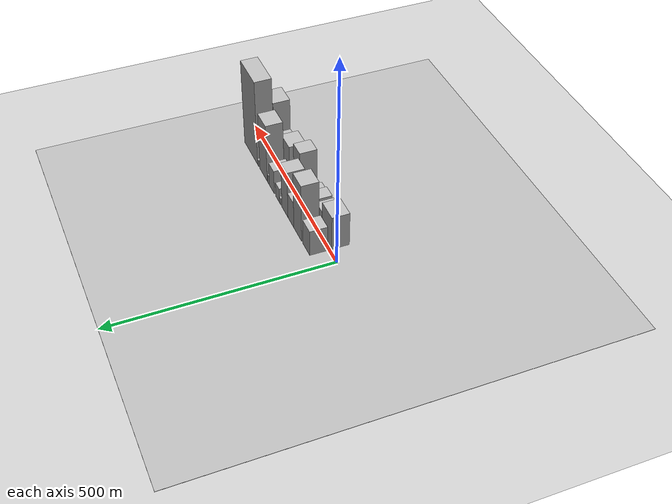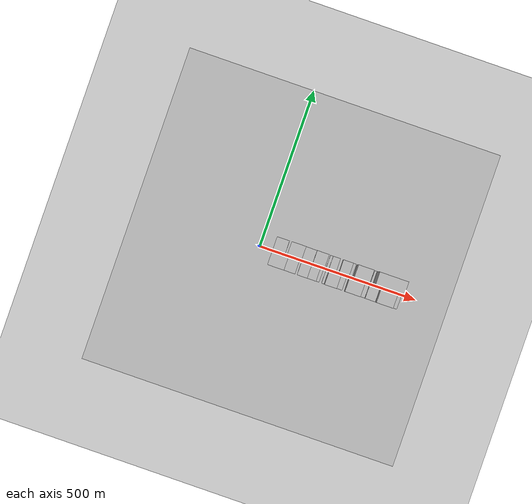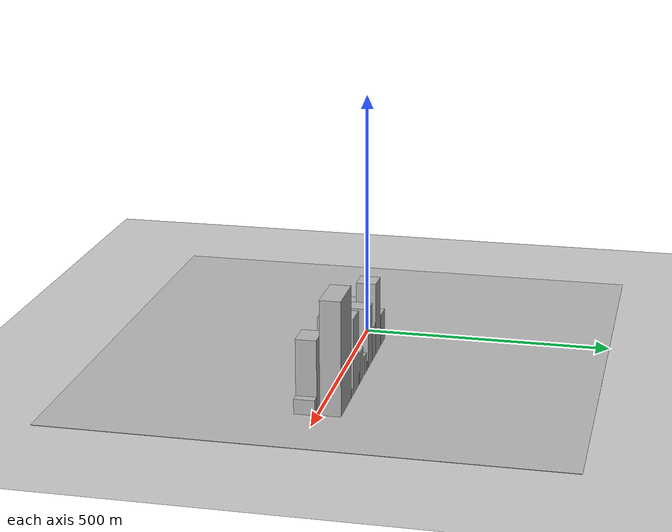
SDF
<?xml version="1.0" encoding="utf-8"?>

<sdf version="1.6">

   <world name="default">

      <gui fullscreen="0">

         <camera name="user_camera">

            <pose>-15 0 4.57585 0 0 0</pose>

            <view_controller>orbit</view_controller>

         </camera>

      </gui>

      <scene>

         <sky>

           <clouds>

             <speed>12</speed>

           </clouds>

         </sky>

         <ambient>0.4 0.4 0.4 1</ambient>

         <background>0.7 0.7 0.7 1</background>

         <shadows>1</shadows>

      </scene>

      <gravity>0 0 -9.8066</gravity>

      <magnetic_field>6e-06 2.3e-05 -4.2e-05</magnetic_field>

      <physics default="0" name="default_physics" type="ode">

         <ode>

            <solver>

               <type>quick</type>

               <iters>10</iters>

               <sor>1.0</sor>

               <use_dynamic_moi_rescaling>0</use_dynamic_moi_rescaling>

            </solver>

            <constraints>

               <cfm>0</cfm>

               <erp>0.2</erp>

               <contact_max_correcting_vel>100</contact_max_correcting_vel>

               <contact_surface_layer>0.001</contact_surface_layer>

            </constraints>

         </ode>

         <max_step_size>0.004</max_step_size>

         <real_time_factor>1</real_time_factor>

         <real_time_update_rate>250</real_time_update_rate>

      </physics>

      <light name="sun" type="directional">

         <cast_shadows>1</cast_shadows>

         <pose>0 0 10 0 0 0</pose>

         <diffuse>0.8 0.8 0.8 1</diffuse>

         <specular>0.2 0.2 0.2 1</specular>

         <attenuation>

            <range>1000</range>

            <constant>0.9</constant>

            <linear>0.01</linear>

            <quadratic>0.001</quadratic>

         </attenuation>

         <direction>-0.5 0.1 -0.9</direction>

      </light>

      <include>

         <name>ground_plane_1</name>

         <uri>model://HANNAS_ground_plane</uri>

         <pose>0 0 0  0 0 0</pose>

      </include>

      <include>

         <name>ground_plane_2</name>

         <uri>model://HANNAS_ground_plane</uri>

         <pose>100 0 0  0 0 0</pose>

      </include>

      <model name="building_1">

         <static>1</static>

         <pose frame="">59.7228 24.5000 0 0.000000 0.000000 1.570796</pose>

         <link name="link">

            <pose frame="">0 0 33.00 0 0 0</pose>

            <collision name="collision">

               <geometry>

                  <box>

                     <size>40.0000 39.4455 66.0000</size>

                  </box>

               </geometry>

               <max_contacts>10</max_contacts>

               <surface>

                  <contact>

                     <ode/>

                  </contact>

                  <bounce/>

                  <friction>

                     <torsional>

                        <ode/>

                     </torsional>

                     <ode/>

                  </friction>

               </surface>

            </collision>

            <visual name="visual">

               <cast_shadows>0</cast_shadows>

               <geometry>

                  <box>

                     <size>40.0000 39.4455 66.0000</size>

                  </box>

               </geometry>

               <material>

                  <script>

                     <uri>model://HANNAS_wall/materials/scripts</uri>

                     <uri>model://HANNAS_wall/materials/textures</uri>

                     <name>vrc/HANNAS_wall</name>

                  </script>

               </material>

            </visual>

            <self_collide>0</self_collide>

            <enable_wind>0</enable_wind>

            <kinematic>0</kinematic>

         </link>

      </model>

      <model name="building_2">

         <static>1</static>

         <pose frame="">109.1394 24.5000 0 0.000000 0.000000 1.570796</pose>

         <link name="link">

            <pose frame="">0 0 75.00 0 0 0</pose>

            <collision name="collision">

               <geometry>

                  <box>

                     <size>40.0000 45.3878 150.0000</size>

                  </box>

               </geometry>

               <max_contacts>10</max_contacts>

               <surface>

                  <contact>

                     <ode/>

                  </contact>

                  <bounce/>

                  <friction>

                     <torsional>

                        <ode/>

                     </torsional>

                     <ode/>

                  </friction>

               </surface>

            </collision>

            <visual name="visual">

               <cast_shadows>0</cast_shadows>

               <geometry>

                  <box>

                     <size>40.0000 45.3878 150.0000</size>

                  </box>

               </geometry>

               <material>

                  <script>

                     <uri>model://HANNAS_wall/materials/scripts</uri>

                     <uri>model://HANNAS_wall/materials/textures</uri>

                     <name>vrc/HANNAS_wall</name>

                  </script>

               </material>

            </visual>

            <self_collide>0</self_collide>

            <enable_wind>0</enable_wind>

            <kinematic>0</kinematic>

         </link>

      </model>

      <model name="building_3">

         <static>1</static>

         <pose frame="">149.4172 24.5000 0 0.000000 0.000000 1.570796</pose>

         <link name="link">

            <pose frame="">0 0 34.50 0 0 0</pose>

            <collision name="collision">

               <geometry>

                  <box>

                     <size>40.0000 35.1679 69.0000</size>

                  </box>

               </geometry>

               <max_contacts>10</max_contacts>

               <surface>

                  <contact>

                     <ode/>

                  </contact>

                  <bounce/>

                  <friction>

                     <torsional>

                        <ode/>

                     </torsional>

                     <ode/>

                  </friction>

               </surface>

            </collision>

            <visual name="visual">

               <cast_shadows>0</cast_shadows>

               <geometry>

                  <box>

                     <size>40.0000 35.1679 69.0000</size>

                  </box>

               </geometry>

               <material>

                  <script>

                     <uri>model://HANNAS_wall/materials/scripts</uri>

                     <uri>model://HANNAS_wall/materials/textures</uri>

                     <name>vrc/HANNAS_wall</name>

                  </script>

               </material>

            </visual>

            <self_collide>0</self_collide>

            <enable_wind>0</enable_wind>

            <kinematic>0</kinematic>

         </link>

      </model>

      <model name="building_4">

         <static>1</static>

         <pose frame="">185.8327 24.5000 0 0.000000 0.000000 1.570796</pose>

         <link name="link">

            <pose frame="">0 0 61.50 0 0 0</pose>

            <collision name="collision">

               <geometry>

                  <box>

                     <size>40.0000 37.6631 123.0000</size>

                  </box>

               </geometry>

               <max_contacts>10</max_contacts>

               <surface>

                  <contact>

                     <ode/>

                  </contact>

                  <bounce/>

                  <friction>

                     <torsional>

                        <ode/>

                     </torsional>

                     <ode/>

                  </friction>

               </surface>

            </collision>

            <visual name="visual">

               <cast_shadows>0</cast_shadows>

               <geometry>

                  <box>

                     <size>40.0000 37.6631 123.0000</size>

                  </box>

               </geometry>

               <material>

                  <script>

                     <uri>model://HANNAS_wall/materials/scripts</uri>

                     <uri>model://HANNAS_wall/materials/textures</uri>

                     <name>vrc/HANNAS_wall</name>

                  </script>

               </material>

            </visual>

            <self_collide>0</self_collide>

            <enable_wind>0</enable_wind>

            <kinematic>0</kinematic>

         </link>

      </model>

      <model name="building_5">

         <static>1</static>

         <pose frame="">215.0154 24.5000 0 0.000000 0.000000 1.570796</pose>

         <link name="link">

            <pose frame="">0 0 9.00 0 0 0</pose>

            <collision name="collision">

               <geometry>

                  <box>

                     <size>40.0000 8.7023 18.0000</size>

                  </box>

               </geometry>

               <max_contacts>10</max_contacts>

               <surface>

                  <contact>

                     <ode/>

                  </contact>

                  <bounce/>

                  <friction>

                     <torsional>

                        <ode/>

                     </torsional>

                     <ode/>

                  </friction>

               </surface>

            </collision>

            <visual name="visual">

               <cast_shadows>0</cast_shadows>

               <geometry>

                  <box>

                     <size>40.0000 8.7023 18.0000</size>

                  </box>

               </geometry>

               <material>

                  <script>

                     <uri>model://HANNAS_wall/materials/scripts</uri>

                     <uri>model://HANNAS_wall/materials/textures</uri>

                     <name>vrc/HANNAS_wall</name>

                  </script>

               </material>

            </visual>

            <self_collide>0</self_collide>

            <enable_wind>0</enable_wind>

            <kinematic>0</kinematic>

         </link>

      </model>

      <model name="building_6">

         <static>1</static>

         <pose frame="">230.9989 24.5000 0 0.000000 0.000000 1.570796</pose>

         <link name="link">

            <pose frame="">0 0 19.50 0 0 0</pose>

            <collision name="collision">

               <geometry>

                  <box>

                     <size>40.0000 23.2647 39.0000</size>

                  </box>

               </geometry>

               <max_contacts>10</max_contacts>

               <surface>

                  <contact>

                     <ode/>

                  </contact>

                  <bounce/>

                  <friction>

                     <torsional>

                        <ode/>

                     </torsional>

                     <ode/>

                  </friction>

               </surface>

            </collision>

            <visual name="visual">

               <cast_shadows>0</cast_shadows>

               <geometry>

                  <box>

                     <size>40.0000 23.2647 39.0000</size>

                  </box>

               </geometry>

               <material>

                  <script>

                     <uri>model://HANNAS_wall/materials/scripts</uri>

                     <uri>model://HANNAS_wall/materials/textures</uri>

                     <name>vrc/HANNAS_wall</name>

                  </script>

               </material>

            </visual>

            <self_collide>0</self_collide>

            <enable_wind>0</enable_wind>

            <kinematic>0</kinematic>

         </link>

      </model>

      <model name="building_7">

         <static>1</static>

         <pose frame="">267.4815 24.5000 0 0.000000 0.000000 1.570796</pose>

         <link name="link">

            <pose frame="">0 0 31.50 0 0 0</pose>

            <collision name="collision">

               <geometry>

                  <box>

                     <size>40.0000 31.7007 63.0000</size>

                  </box>

               </geometry>

               <max_contacts>10</max_contacts>

               <surface>

                  <contact>

                     <ode/>

                  </contact>

                  <bounce/>

                  <friction>

                     <torsional>

                        <ode/>

                     </torsional>

                     <ode/>

                  </friction>

               </surface>

            </collision>

            <visual name="visual">

               <cast_shadows>0</cast_shadows>

               <geometry>

                  <box>

                     <size>40.0000 31.7007 63.0000</size>

                  </box>

               </geometry>

               <material>

                  <script>

                     <uri>model://HANNAS_wall/materials/scripts</uri>

                     <uri>model://HANNAS_wall/materials/textures</uri>

                     <name>vrc/HANNAS_wall</name>

                  </script>

               </material>

            </visual>

            <self_collide>0</self_collide>

            <enable_wind>0</enable_wind>

            <kinematic>0</kinematic>

         </link>

      </model>

      <model name="building_8">

         <static>1</static>

         <pose frame="">288.3766 24.5000 0 0.000000 0.000000 1.570796</pose>

         <link name="link">

            <pose frame="">0 0 12.00 0 0 0</pose>

            <collision name="collision">

               <geometry>

                  <box>

                     <size>40.0000 10.0895 24.0000</size>

                  </box>

               </geometry>

               <max_contacts>10</max_contacts>

               <surface>

                  <contact>

                     <ode/>

                  </contact>

                  <bounce/>

                  <friction>

                     <torsional>

                        <ode/>

                     </torsional>

                     <ode/>

                  </friction>

               </surface>

            </collision>

            <visual name="visual">

               <cast_shadows>0</cast_shadows>

               <geometry>

                  <box>

                     <size>40.0000 10.0895 24.0000</size>

                  </box>

               </geometry>

               <material>

                  <script>

                     <uri>model://HANNAS_wall/materials/scripts</uri>

                     <uri>model://HANNAS_wall/materials/textures</uri>

                     <name>vrc/HANNAS_wall</name>

                  </script>

               </material>

            </visual>

            <self_collide>0</self_collide>

            <enable_wind>0</enable_wind>

            <kinematic>0</kinematic>

         </link>

      </model>

      <model name="building_9">

         <static>1</static>

         <pose frame="">320.9958 24.5000 0 0.000000 0.000000 1.570796</pose>

         <link name="link">

            <pose frame="">0 0 76.50 0 0 0</pose>

            <collision name="collision">

               <geometry>

                  <box>

                     <size>40.0000 49.1489 153.0000</size>

                  </box>

               </geometry>

               <max_contacts>10</max_contacts>

               <surface>

                  <contact>

                     <ode/>

                  </contact>

                  <bounce/>

                  <friction>

                     <torsional>

                        <ode/>

                     </torsional>

                     <ode/>

                  </friction>

               </surface>

            </collision>

            <visual name="visual">

               <cast_shadows>0</cast_shadows>

               <geometry>

                  <box>

                     <size>40.0000 49.1489 153.0000</size>

                  </box>

               </geometry>

               <material>

                  <script>

                     <uri>model://HANNAS_wall/materials/scripts</uri>

                     <uri>model://HANNAS_wall/materials/textures</uri>

                     <name>vrc/HANNAS_wall</name>

                  </script>

               </material>

            </visual>

            <self_collide>0</self_collide>

            <enable_wind>0</enable_wind>

            <kinematic>0</kinematic>

         </link>

      </model>

      <model name="building_10">

         <static>1</static>

         <pose frame="">356.3122 24.5000 0 0.000000 0.000000 1.570796</pose>

         <link name="link">

            <pose frame="">0 0 9.00 0 0 0</pose>

            <collision name="collision">

               <geometry>

                  <box>

                     <size>40.0000 7.4839 18.0000</size>

                  </box>

               </geometry>

               <max_contacts>10</max_contacts>

               <surface>

                  <contact>

                     <ode/>

                  </contact>

                  <bounce/>

                  <friction>

                     <torsional>

                        <ode/>

                     </torsional>

                     <ode/>

                  </friction>

               </surface>

            </collision>

            <visual name="visual">

               <cast_shadows>0</cast_shadows>

               <geometry>

                  <box>

                     <size>40.0000 7.4839 18.0000</size>

                  </box>

               </geometry>

               <material>

                  <script>

                     <uri>model://HANNAS_wall/materials/scripts</uri>

                     <uri>model://HANNAS_wall/materials/textures</uri>

                     <name>vrc/HANNAS_wall</name>

                  </script>

               </material>

            </visual>

            <self_collide>0</self_collide>

            <enable_wind>0</enable_wind>

            <kinematic>0</kinematic>

         </link>

      </model>

      <model name="building_11">

         <static>1</static>

         <pose frame="">404.8409 24.5000 0 0.000000 0.000000 1.570796</pose>

         <link name="link">

            <pose frame="">0 0 112.50 0 0 0</pose>

            <collision name="collision">

               <geometry>

                  <box>

                     <size>40.0000 89.5735 225.0000</size>

                  </box>

               </geometry>

               <max_contacts>10</max_contacts>

               <surface>

                  <contact>

                     <ode/>

                  </contact>

                  <bounce/>

                  <friction>

                     <torsional>

                        <ode/>

                     </torsional>

                     <ode/>

                  </friction>

               </surface>

            </collision>

            <visual name="visual">

               <cast_shadows>0</cast_shadows>

               <geometry>

                  <box>

                     <size>40.0000 89.5735 225.0000</size>

                  </box>

               </geometry>

               <material>

                  <script>

                     <uri>model://HANNAS_wall/materials/scripts</uri>

                     <uri>model://HANNAS_wall/materials/textures</uri>

                     <name>vrc/HANNAS_wall</name>

                  </script>

               </material>

            </visual>

            <self_collide>0</self_collide>

            <enable_wind>0</enable_wind>

            <kinematic>0</kinematic>

         </link>

      </model>

      <model name="building_12">

         <static>1</static>

         <pose frame="">66.0364 -24.5000 0 0.000000 0.000000 1.570796</pose>

         <link name="link">

            <pose frame="">0 0 43.50 0 0 0</pose>

            <collision name="collision">

               <geometry>

                  <box>

                     <size>40.0000 52.0728 87.0000</size>

                  </box>

               </geometry>

               <max_contacts>10</max_contacts>

               <surface>

                  <contact>

                     <ode/>

                  </contact>

                  <bounce/>

                  <friction>

                     <torsional>

                        <ode/>

                     </torsional>

                     <ode/>

                  </friction>

               </surface>

            </collision>

            <visual name="visual">

               <cast_shadows>0</cast_shadows>

               <geometry>

                  <box>

                     <size>40.0000 52.0728 87.0000</size>

                  </box>

               </geometry>

               <material>

                  <script>

                     <uri>model://HANNAS_wall/materials/scripts</uri>

                     <uri>model://HANNAS_wall/materials/textures</uri>

                     <name>vrc/HANNAS_wall</name>

                  </script>

               </material>

            </visual>

            <self_collide>0</self_collide>

            <enable_wind>0</enable_wind>

            <kinematic>0</kinematic>

         </link>

      </model>

      <model name="building_13">

         <static>1</static>

         <pose frame="">109.6175 -24.5000 0 0.000000 0.000000 1.570796</pose>

         <link name="link">

            <pose frame="">0 0 30.00 0 0 0</pose>

            <collision name="collision">

               <geometry>

                  <box>

                     <size>40.0000 35.0894 60.0000</size>

                  </box>

               </geometry>

               <max_contacts>10</max_contacts>

               <surface>

                  <contact>

                     <ode/>

                  </contact>

                  <bounce/>

                  <friction>

                     <torsional>

                        <ode/>

                     </torsional>

                     <ode/>

                  </friction>

               </surface>

            </collision>

            <visual name="visual">

               <cast_shadows>0</cast_shadows>

               <geometry>

                  <box>

                     <size>40.0000 35.0894 60.0000</size>

                  </box>

               </geometry>

               <material>

                  <script>

                     <uri>model://HANNAS_wall/materials/scripts</uri>

                     <uri>model://HANNAS_wall/materials/textures</uri>

                     <name>vrc/HANNAS_wall</name>

                  </script>

               </material>

            </visual>

            <self_collide>0</self_collide>

            <enable_wind>0</enable_wind>

            <kinematic>0</kinematic>

         </link>

      </model>

      <model name="building_14">

         <static>1</static>

         <pose frame="">150.1940 -24.5000 0 0.000000 0.000000 1.570796</pose>

         <link name="link">

            <pose frame="">0 0 30.00 0 0 0</pose>

            <collision name="collision">

               <geometry>

                  <box>

                     <size>40.0000 32.0635 60.0000</size>

                  </box>

               </geometry>

               <max_contacts>10</max_contacts>

               <surface>

                  <contact>

                     <ode/>

                  </contact>

                  <bounce/>

                  <friction>

                     <torsional>

                        <ode/>

                     </torsional>

                     <ode/>

                  </friction>

               </surface>

            </collision>

            <visual name="visual">

               <cast_shadows>0</cast_shadows>

               <geometry>

                  <box>

                     <size>40.0000 32.0635 60.0000</size>

                  </box>

               </geometry>

               <material>

                  <script>

                     <uri>model://HANNAS_wall/materials/scripts</uri>

                     <uri>model://HANNAS_wall/materials/textures</uri>

                     <name>vrc/HANNAS_wall</name>

                  </script>

               </material>

            </visual>

            <self_collide>0</self_collide>

            <enable_wind>0</enable_wind>

            <kinematic>0</kinematic>

         </link>

      </model>

      <model name="building_15">

         <static>1</static>

         <pose frame="">180.3611 -24.5000 0 0.000000 0.000000 1.570796</pose>

         <link name="link">

            <pose frame="">0 0 25.50 0 0 0</pose>

            <collision name="collision">

               <geometry>

                  <box>

                     <size>40.0000 28.2707 51.0000</size>

                  </box>

               </geometry>

               <max_contacts>10</max_contacts>

               <surface>

                  <contact>

                     <ode/>

                  </contact>

                  <bounce/>

                  <friction>

                     <torsional>

                        <ode/>

                     </torsional>

                     <ode/>

                  </friction>

               </surface>

            </collision>

            <visual name="visual">

               <cast_shadows>0</cast_shadows>

               <geometry>

                  <box>

                     <size>40.0000 28.2707 51.0000</size>

                  </box>

               </geometry>

               <material>

                  <script>

                     <uri>model://HANNAS_wall/materials/scripts</uri>

                     <uri>model://HANNAS_wall/materials/textures</uri>

                     <name>vrc/HANNAS_wall</name>

                  </script>

               </material>

            </visual>

            <self_collide>0</self_collide>

            <enable_wind>0</enable_wind>

            <kinematic>0</kinematic>

         </link>

      </model>

      <model name="building_16">

         <static>1</static>

         <pose frame="">199.5665 -24.5000 0 0.000000 0.000000 1.570796</pose>

         <link name="link">

            <pose frame="">0 0 10.50 0 0 0</pose>

            <collision name="collision">

               <geometry>

                  <box>

                     <size>40.0000 10.1402 21.0000</size>

                  </box>

               </geometry>

               <max_contacts>10</max_contacts>

               <surface>

                  <contact>

                     <ode/>

                  </contact>

                  <bounce/>

                  <friction>

                     <torsional>

                        <ode/>

                     </torsional>

                     <ode/>

                  </friction>

               </surface>

            </collision>

            <visual name="visual">

               <cast_shadows>0</cast_shadows>

               <geometry>

                  <box>

                     <size>40.0000 10.1402 21.0000</size>

                  </box>

               </geometry>

               <material>

                  <script>

                     <uri>model://HANNAS_wall/materials/scripts</uri>

                     <uri>model://HANNAS_wall/materials/textures</uri>

                     <name>vrc/HANNAS_wall</name>

                  </script>

               </material>

            </visual>

            <self_collide>0</self_collide>

            <enable_wind>0</enable_wind>

            <kinematic>0</kinematic>

         </link>

      </model>

      <model name="building_17">

         <static>1</static>

         <pose frame="">216.7567 -24.5000 0 0.000000 0.000000 1.570796</pose>

         <link name="link">

            <pose frame="">0 0 9.00 0 0 0</pose>

            <collision name="collision">

               <geometry>

                  <box>

                     <size>40.0000 8.2401 18.0000</size>

                  </box>

               </geometry>

               <max_contacts>10</max_contacts>

               <surface>

                  <contact>

                     <ode/>

                  </contact>

                  <bounce/>

                  <friction>

                     <torsional>

                        <ode/>

                     </torsional>

                     <ode/>

                  </friction>

               </surface>

            </collision>

            <visual name="visual">

               <cast_shadows>0</cast_shadows>

               <geometry>

                  <box>

                     <size>40.0000 8.2401 18.0000</size>

                  </box>

               </geometry>

               <material>

                  <script>

                     <uri>model://HANNAS_wall/materials/scripts</uri>

                     <uri>model://HANNAS_wall/materials/textures</uri>

                     <name>vrc/HANNAS_wall</name>

                  </script>

               </material>

            </visual>

            <self_collide>0</self_collide>

            <enable_wind>0</enable_wind>

            <kinematic>0</kinematic>

         </link>

      </model>

      <model name="building_18">

         <static>1</static>

         <pose frame="">239.8529 -24.5000 0 0.000000 0.000000 1.570796</pose>

         <link name="link">

            <pose frame="">0 0 60.00 0 0 0</pose>

            <collision name="collision">

               <geometry>

                  <box>

                     <size>40.0000 37.9522 120.0000</size>

                  </box>

               </geometry>

               <max_contacts>10</max_contacts>

               <surface>

                  <contact>

                     <ode/>

                  </contact>

                  <bounce/>

                  <friction>

                     <torsional>

                        <ode/>

                     </torsional>

                     <ode/>

                  </friction>

               </surface>

            </collision>

            <visual name="visual">

               <cast_shadows>0</cast_shadows>

               <geometry>

                  <box>

                     <size>40.0000 37.9522 120.0000</size>

                  </box>

               </geometry>

               <material>

                  <script>

                     <uri>model://HANNAS_wall/materials/scripts</uri>

                     <uri>model://HANNAS_wall/materials/textures</uri>

                     <name>vrc/HANNAS_wall</name>

                  </script>

               </material>

            </visual>

            <self_collide>0</self_collide>

            <enable_wind>0</enable_wind>

            <kinematic>0</kinematic>

         </link>

      </model>

      <model name="building_19">

         <static>1</static>

         <pose frame="">268.4132 -24.5000 0 0.000000 0.000000 1.570796</pose>

         <link name="link">

            <pose frame="">0 0 16.50 0 0 0</pose>

            <collision name="collision">

               <geometry>

                  <box>

                     <size>40.0000 19.1684 33.0000</size>

                  </box>

               </geometry>

               <max_contacts>10</max_contacts>

               <surface>

                  <contact>

                     <ode/>

                  </contact>

                  <bounce/>

                  <friction>

                     <torsional>

                        <ode/>

                     </torsional>

                     <ode/>

                  </friction>

               </surface>

            </collision>

            <visual name="visual">

               <cast_shadows>0</cast_shadows>

               <geometry>

                  <box>

                     <size>40.0000 19.1684 33.0000</size>

                  </box>

               </geometry>

               <material>

                  <script>

                     <uri>model://HANNAS_wall/materials/scripts</uri>

                     <uri>model://HANNAS_wall/materials/textures</uri>

                     <name>vrc/HANNAS_wall</name>

                  </script>

               </material>

            </visual>

            <self_collide>0</self_collide>

            <enable_wind>0</enable_wind>

            <kinematic>0</kinematic>

         </link>

      </model>

      <model name="building_20">

         <static>1</static>

         <pose frame="">310.5565 -24.5000 0 0.000000 0.000000 1.570796</pose>

         <link name="link">

            <pose frame="">0 0 45.00 0 0 0</pose>

            <collision name="collision">

               <geometry>

                  <box>

                     <size>40.0000 49.1183 90.0000</size>

                  </box>

               </geometry>

               <max_contacts>10</max_contacts>

               <surface>

                  <contact>

                     <ode/>

                  </contact>

                  <bounce/>

                  <friction>

                     <torsional>

                        <ode/>

                     </torsional>

                     <ode/>

                  </friction>

               </surface>

            </collision>

            <visual name="visual">

               <cast_shadows>0</cast_shadows>

               <geometry>

                  <box>

                     <size>40.0000 49.1183 90.0000</size>

                  </box>

               </geometry>

               <material>

                  <script>

                     <uri>model://HANNAS_wall/materials/scripts</uri>

                     <uri>model://HANNAS_wall/materials/textures</uri>

                     <name>vrc/HANNAS_wall</name>

                  </script>

               </material>

            </visual>

            <self_collide>0</self_collide>

            <enable_wind>0</enable_wind>

            <kinematic>0</kinematic>

         </link>

      </model>

      <model name="building_21">

         <static>1</static>

         <pose frame="">343.0279 -24.5000 0 0.000000 0.000000 1.570796</pose>

         <link name="link">

            <pose frame="">0 0 15.00 0 0 0</pose>

            <collision name="collision">

               <geometry>

                  <box>

                     <size>40.0000 15.8245 30.0000</size>

                  </box>

               </geometry>

               <max_contacts>10</max_contacts>

               <surface>

                  <contact>

                     <ode/>

                  </contact>

                  <bounce/>

                  <friction>

                     <torsional>

                        <ode/>

                     </torsional>

                     <ode/>

                  </friction>

               </surface>

            </collision>

            <visual name="visual">

               <cast_shadows>0</cast_shadows>

               <geometry>

                  <box>

                     <size>40.0000 15.8245 30.0000</size>

                  </box>

               </geometry>

               <material>

                  <script>

                     <uri>model://HANNAS_wall/materials/scripts</uri>

                     <uri>model://HANNAS_wall/materials/textures</uri>

                     <name>vrc/HANNAS_wall</name>

                  </script>

               </material>

            </visual>

            <self_collide>0</self_collide>

            <enable_wind>0</enable_wind>

            <kinematic>0</kinematic>

         </link>

      </model>

      <model name="building_22">

         <static>1</static>

         <pose frame="">367.2179 -24.5000 0 0.000000 0.000000 1.570796</pose>

         <link name="link">

            <pose frame="">0 0 30.00 0 0 0</pose>

            <collision name="collision">

               <geometry>

                  <box>

                     <size>40.0000 32.5555 60.0000</size>

                  </box>

               </geometry>

               <max_contacts>10</max_contacts>

               <surface>

                  <contact>

                     <ode/>

                  </contact>

                  <bounce/>

                  <friction>

                     <torsional>

                        <ode/>

                     </torsional>

                     <ode/>

                  </friction>

               </surface>

            </collision>

            <visual name="visual">

               <cast_shadows>0</cast_shadows>

               <geometry>

                  <box>

                     <size>40.0000 32.5555 60.0000</size>

                  </box>

               </geometry>

               <material>

                  <script>

                     <uri>model://HANNAS_wall/materials/scripts</uri>

                     <uri>model://HANNAS_wall/materials/textures</uri>

                     <name>vrc/HANNAS_wall</name>

                  </script>

               </material>

            </visual>

            <self_collide>0</self_collide>

            <enable_wind>0</enable_wind>

            <kinematic>0</kinematic>

         </link>

      </model>

      <model name="building_23">

         <static>1</static>

         <pose frame="">409.7172 -24.5000 0 0.000000 0.000000 1.570796</pose>

         <link name="link">

            <pose frame="">0 0 70.50 0 0 0</pose>

            <collision name="collision">

               <geometry>

                  <box>

                     <size>40.0000 52.4429 141.0000</size>

                  </box>

               </geometry>

               <max_contacts>10</max_contacts>

               <surface>

                  <contact>

                     <ode/>

                  </contact>

                  <bounce/>

                  <friction>

                     <torsional>

                        <ode/>

                     </torsional>

                     <ode/>

                  </friction>

               </surface>

            </collision>

            <visual name="visual">

               <cast_shadows>0</cast_shadows>

               <geometry>

                  <box>

                     <size>40.0000 52.4429 141.0000</size>

                  </box>

               </geometry>

               <material>

                  <script>

                     <uri>model://HANNAS_wall/materials/scripts</uri>

                     <uri>model://HANNAS_wall/materials/textures</uri>

                     <name>vrc/HANNAS_wall</name>

                  </script>

               </material>

            </visual>

            <self_collide>0</self_collide>

            <enable_wind>0</enable_wind>

            <kinematic>0</kinematic>

         </link>

      </model>

      <model name="building_24">

         <static>1</static>

         <pose frame="">444.5615 -24.5000 0 0.000000 0.000000 1.570796</pose>

         <link name="link">

            <pose frame="">0 0 15.00 0 0 0</pose>

            <collision name="collision">

               <geometry>

                  <box>

                     <size>40.0000 17.2458 30.0000</size>

                  </box>

               </geometry>

               <max_contacts>10</max_contacts>

               <surface>

                  <contact>

                     <ode/>

                  </contact>

                  <bounce/>

                  <friction>

                     <torsional>

                        <ode/>

                     </torsional>

                     <ode/>

                  </friction>

               </surface>

            </collision>

            <visual name="visual">

               <cast_shadows>0</cast_shadows>

               <geometry>

                  <box>

                     <size>40.0000 17.2458 30.0000</size>

                  </box>

               </geometry>

               <material>

                  <script>

                     <uri>model://HANNAS_wall/materials/scripts</uri>

                     <uri>model://HANNAS_wall/materials/textures</uri>

                     <name>vrc/HANNAS_wall</name>

                  </script>

               </material>

            </visual>

            <self_collide>0</self_collide>

            <enable_wind>0</enable_wind>

            <kinematic>0</kinematic>

         </link>

      </model>

   </world>

</sdf>

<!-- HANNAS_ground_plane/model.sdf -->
<sdf version="1.4">
<model name="HANNAS_ground_plane">
  <static>true</static>
    <link name="link">
      <collision name="collision">
        <geometry>
          <plane>
            <normal>0 0 1</normal>
            <size>1000 1000</size>
          </plane>
        </geometry>
        <surface>
          <friction>
            <ode>
              <mu>100</mu>
              <mu2>50</mu2>
            </ode>
          </friction>
        </surface>
      </collision>
      <visual name="visual">
        <cast_shadows>false</cast_shadows>
        <geometry>
          <plane>
            <normal>0 0 1</normal>
            <size>1000 1000</size>
          </plane>
        </geometry>
        <material>
          <script>
            <uri>model://HANNAS_ground_plane/materials/scripts/HANNAS_ground_plane.material</uri>
	    <uri>model://HANNAS_ground_plane/materials/textures</uri>
            <name>HANNASGroundPlane/Image</name>
          </script>
        </material>
      </visual>
    </link>
  </model>
</sdf>
